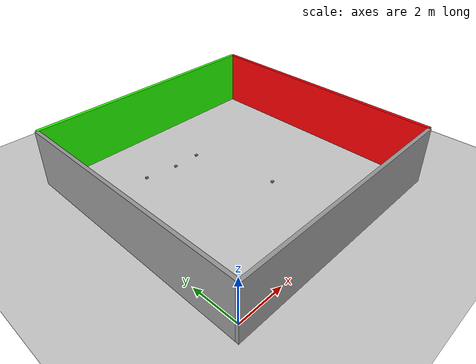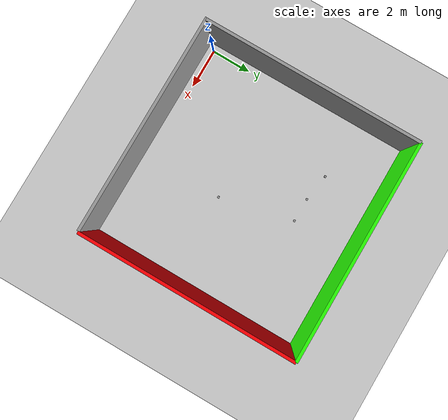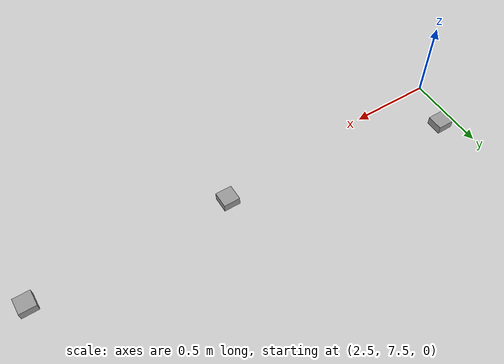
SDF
<?xml version="1.0"?>
<sdf version='1.6'>

<world name='default'>
    <include>
      <uri>model://ground_plane</uri>
    </include>

    <include>
      <uri>model://sun</uri>
    </include>

    <gravity>0 0 -9.8</gravity>
    <magnetic_field>6e-06 2.3e-05 -4.2e-05</magnetic_field>
    <atmosphere type='adiabatic'/>
    <physics name='default_physics' default='0' type='ode'>
      <max_step_size>0.001</max_step_size>
      <real_time_factor>1</real_time_factor>
      <real_time_update_rate>1000</real_time_update_rate>
    </physics>
    <scene>
      <ambient>0.4 0.4 0.4 1</ambient>
      <background>0.7 0.7 0.7 1</background>
      <shadows>1</shadows>
    </scene>
    <spherical_coordinates>
      <surface_model>EARTH_WGS84</surface_model>
      <latitude_deg>0</latitude_deg>
      <longitude_deg>0</longitude_deg>
      <elevation>0</elevation>
      <heading_deg>0</heading_deg>
    </spherical_coordinates>

    <model name='map_mini'>
      <pose frame=''>5 5 0 0 -0 0</pose>
      <link name='Wall_10'>
        <collision name='Wall_10_Collision'>
          <geometry>
            <box>
              <size>10.8 0.15 2.5</size>
            </box>
          </geometry>
          <pose frame=''>0 0 1.25 0 -0 0</pose>
          <max_contacts>10</max_contacts>
          <surface>
            <contact>
              <ode/>
            </contact>
            <bounce/>
            <friction>
              <torsional>
                <ode/>
              </torsional>
              <ode/>
            </friction>
          </surface>
        </collision>
        <visual name='Wall_10_Visual'>
          <pose frame=''>0 0 1.25 0 -0 0</pose>
          <geometry>
            <box>
              <size>10.8 0.15 2.5</size>
            </box>
          </geometry>
          <material>
            <script>
              <uri>file://media/materials/scripts/gazebo.material</uri>
              <name>Gazebo/Grey</name>
            </script>
            <ambient>1 1 1 1</ambient>
          </material>
          <meta>
            <layer>0</layer>
          </meta>
        </visual>
        <pose frame=''>-0.075052 -5.4 0 0 -0 0</pose>
        <self_collide>0</self_collide>
        <kinematic>0</kinematic>
      </link>
      <link name='Wall_12'>
        <collision name='Wall_12_Collision'>
          <geometry>
            <box>
              <size>10.8 0.15 2.5</size>
            </box>
          </geometry>
          <pose frame=''>0 0 1.25 0 -0 0</pose>
          <max_contacts>10</max_contacts>
          <surface>
            <contact>
              <ode/>
            </contact>
            <bounce/>
            <friction>
              <torsional>
                <ode/>
              </torsional>
              <ode/>
            </friction>
          </surface>
        </collision>
        <visual name='Wall_12_Visual'>
          <pose frame=''>0 0 1.25 0 -0 0</pose>
          <geometry>
            <box>
              <size>10.8 0.15 2.5</size>
            </box>
          </geometry>
          <material>
            <script>
              <uri>file://media/materials/scripts/gazebo.material</uri>
              <name>Gazebo/Grey</name>
            </script>
            <ambient>1 0 0.0156863 1</ambient>
          </material>
          <meta>
            <layer>0</layer>
          </meta>
        </visual>
        <pose frame=''>5.4 0 0 0 -0 1.56802</pose>
        <self_collide>0</self_collide>
        <kinematic>0</kinematic>
      </link>
      <link name='Wall_14'>
        <collision name='Wall_14_Collision'>
          <geometry>
            <box>
              <size>10.8 0.15 2.5</size>
            </box>
          </geometry>
          <pose frame=''>0 0 1.25 0 -0 0</pose>
          <max_contacts>10</max_contacts>
          <surface>
            <contact>
              <ode/>
            </contact>
            <bounce/>
            <friction>
              <torsional>
                <ode/>
              </torsional>
              <ode/>
            </friction>
          </surface>
        </collision>
        <visual name='Wall_14_Visual'>
          <pose frame=''>0 0 1.25 0 -0 0</pose>
          <geometry>
            <box>
              <size>10.8 0.15 2.5</size>
            </box>
          </geometry>
          <material>
            <script>
              <uri>file://media/materials/scripts/gazebo.material</uri>
              <name>Gazebo/Grey</name>
            </script>
            <ambient>0.14902 1 0 1</ambient>
          </material>
          <meta>
            <layer>0</layer>
          </meta>
        </visual>
        <pose frame=''>-5.1e-05 5.4 0 0 -0 3.14159</pose>
        <self_collide>0</self_collide>
        <kinematic>0</kinematic>
      </link>
      <link name='Wall_4'>
        <collision name='Wall_4_Collision'>
          <geometry>
            <box>
              <size>10.8 0.15 2.5</size>
            </box>
          </geometry>
          <pose frame=''>0 0 1.25 0 -0 0</pose>
          <max_contacts>10</max_contacts>
          <surface>
            <contact>
              <ode/>
            </contact>
            <bounce/>
            <friction>
              <torsional>
                <ode/>
              </torsional>
              <ode/>
            </friction>
          </surface>
        </collision>
        <visual name='Wall_4_Visual'>
          <pose frame=''>0 0 1.25 0 -0 0</pose>
          <geometry>
            <box>
              <size>10.8 0.15 2.5</size>
            </box>
          </geometry>
          <material>
            <script>
              <uri>file://media/materials/scripts/gazebo.material</uri>
              <name>Gazebo/Grey</name>
            </script>
            <ambient>1 1 1 1</ambient>
          </material>
          <meta>
            <layer>0</layer>
          </meta>
        </visual>
        <pose frame=''>-5.4 0 0 0 -0 1.5708</pose>
        <self_collide>0</self_collide>
        <kinematic>0</kinematic>
      </link>
      <static>1</static>
    </model>

    <model name='unit_box_A'>
      <pose frame=''>6.06 3.84 0 0 -0 0</pose>
      <link name='unit_box::unit_box::link'>
        <inertial>
          <mass>1</mass>
          <inertia>
            <ixx>0.166667</ixx>
            <ixy>0</ixy>
            <ixz>0</ixz>
            <iyy>0.166667</iyy>
            <iyz>0</iyz>
            <izz>0.166667</izz>
          </inertia>
        </inertial>
        <collision name='collision'>
          <geometry>
            <box>
              <size>0.1 0.1 0.1</size>
            </box>
          </geometry>
          <max_contacts>10</max_contacts>
          <surface>
            <contact>
              <ode/>
            </contact>
            <bounce/>
            <friction>
              <torsional>
                <ode/>
              </torsional>
              <ode/>
            </friction>
          </surface>
        </collision>
        <visual name='visual'>
          <geometry>
            <box>
              <size>0.1 0.1 0.1</size>
            </box>
          </geometry>
          <material>
            <script>
              <name>Gazebo/Grey</name>
              <uri>file://media/materials/scripts/gazebo.material</uri>
            </script>
          </material>
        </visual>
        <self_collide>0</self_collide>
        <kinematic>0</kinematic>
      </link>
    </model>

	<model name='unit_box_B'>
      <pose frame=''>2.6 7.8 0 0 -0 0</pose>
      <link name='unit_box::unit_box::link'>
        <inertial>
          <mass>1</mass>
          <inertia>
            <ixx>0.166667</ixx>
            <ixy>0</ixy>
            <ixz>0</ixz>
            <iyy>0.166667</iyy>
            <iyz>0</iyz>
            <izz>0.166667</izz>
          </inertia>
        </inertial>
        <collision name='collision'>
          <geometry>
            <box>
              <size>0.1 0.1 0.1</size>
            </box>
          </geometry>
          <max_contacts>10</max_contacts>
          <surface>
            <contact>
              <ode/>
            </contact>
            <bounce/>
            <friction>
              <torsional>
                <ode/>
              </torsional>
              <ode/>
            </friction>
          </surface>
        </collision>
        <visual name='visual'>
          <geometry>
            <box>
              <size>0.1 0.1 0.1</size>
            </box>
          </geometry>
          <material>
            <script>
              <name>Gazebo/Grey</name>
              <uri>file://media/materials/scripts/gazebo.material</uri>
            </script>
          </material>
        </visual>
        <self_collide>0</self_collide>
        <kinematic>0</kinematic>
      </link>
    </model>

	<model name='unit_box_C'>
      <pose frame=''>4 7.58 0 0 -0 0</pose>
      <link name='unit_box::unit_box::link'>
        <inertial>
          <mass>1</mass>
          <inertia>
            <ixx>0.166667</ixx>
            <ixy>0</ixy>
            <ixz>0</ixz>
            <iyy>0.166667</iyy>
            <iyz>0</iyz>
            <izz>0.166667</izz>
          </inertia>
        </inertial>
        <collision name='collision'>
          <geometry>
            <box>
              <size>0.1 0.1 0.1</size>
            </box>
          </geometry>
          <max_contacts>10</max_contacts>
          <surface>
            <contact>
              <ode/>
            </contact>
            <bounce/>
            <friction>
              <torsional>
                <ode/>
              </torsional>
              <ode/>
            </friction>
          </surface>
        </collision>
        <visual name='visual'>
          <geometry>
            <box>
              <size>0.1 0.1 0.1</size>
            </box>
          </geometry>
          <material>
            <script>
              <name>Gazebo/Grey</name>
              <uri>file://media/materials/scripts/gazebo.material</uri>
            </script>
          </material>
        </visual>
        <self_collide>0</self_collide>
        <kinematic>0</kinematic>
      </link>
    </model>

<model name='unit_box_D'>
      <pose frame=''>5.2 7.58 0 0 -0 0</pose>
      <link name='unit_box::unit_box::link'>
        <inertial>
          <mass>1</mass>
          <inertia>
            <ixx>0.166667</ixx>
            <ixy>0</ixy>
            <ixz>0</ixz>
            <iyy>0.166667</iyy>
            <iyz>0</iyz>
            <izz>0.166667</izz>
          </inertia>
        </inertial>
        <collision name='collision'>
          <geometry>
            <box>
              <size>0.1 0.1 0.1</size>
            </box>
          </geometry>
          <max_contacts>10</max_contacts>
          <surface>
            <contact>
              <ode/>
            </contact>
            <bounce/>
            <friction>
              <torsional>
                <ode/>
              </torsional>
              <ode/>
            </friction>
          </surface>
        </collision>
        <visual name='visual'>
          <geometry>
            <box>
              <size>0.1 0.1 0.1</size>
            </box>
          </geometry>
          <material>
            <script>
              <name>Gazebo/Grey</name>
              <uri>file://media/materials/scripts/gazebo.material</uri>
            </script>
          </material>
        </visual>
        <self_collide>0</self_collide>
        <kinematic>0</kinematic>
      </link>
    </model>
  </world>
</sdf>
